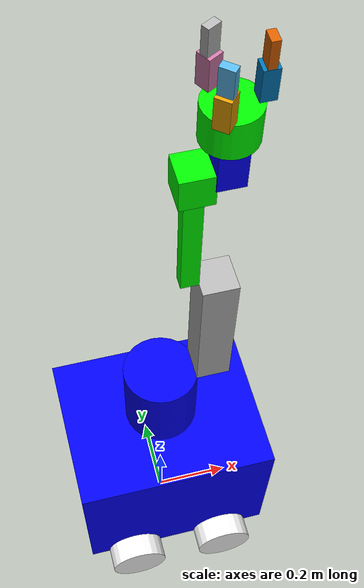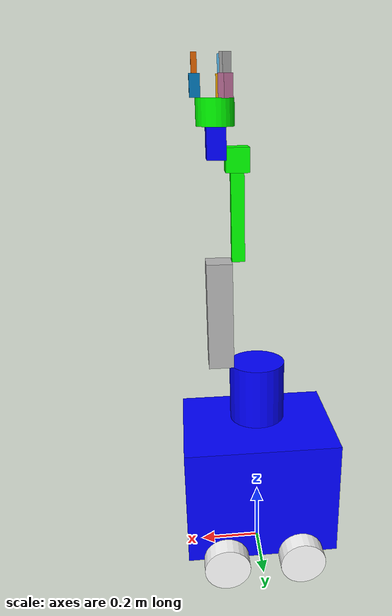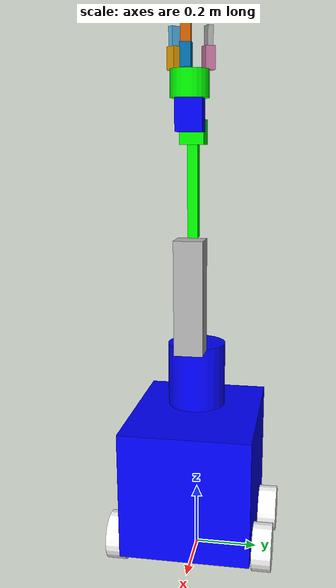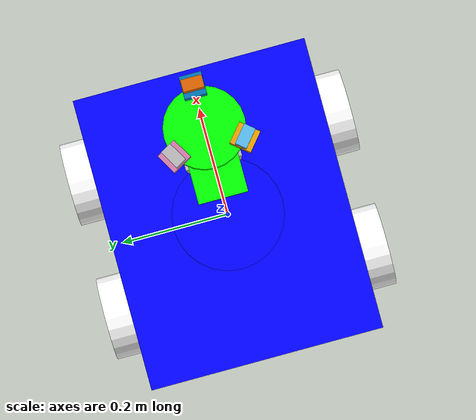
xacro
<?xml version="1.0"?>

<robot name="gazebo_M.A.R.S_prototype" xmlns:xacro="http://www.ros.org/wiki/xacro">
<xacro:property name="radius" value="0.075" />
<xacro:property name="length" value="0.06" />

<!--MATERIAL COLORS -->
  <material name="blue">
    <color rgba="0 0 1 1"/>
  </material>

<material name="red">
    <color rgba="1 0 0 1"/>
  </material>

<material name="pink">
    <color rgba="0.8 0 1 0.5"/>
  </material>

    <material name="white">
    <color rgba="1 1 1 1"/>
  </material>

  <material name="green">
    <color rgba="0 1 0 1"/>
</material>

<gazebo reference="base_link">
  <material>Gazebo/orange</material>
</gazebo>

<!--/////////////////////// MACROS FOR GAZEBO TRANSMISSION TAGS AND ROS CONTROL PLUGIN ///////////////////////////////////////////////-->
 <!-- plugin -->

 <xacro:macro name="transmission_block" params="joint_name">
	    <transmission name="joint_tranmission">
	    <type>transmission_interface/SimpleTransmission</type>
	    <joint name="${joint_name}">
	        <hardwareInterface>hardware_interface/PositionJointInterface</hardwareInterface>
	    </joint>
	    <actuator name="joint_motor">
	        <hardwareInterface>hardware_interface/PositionJointInterface</hardwareInterface>
	        <mechanicalReduction>1</mechanicalReduction>
	    </actuator>
	  </transmission>
   </xacro:macro>

<!-- Macros for inertia matrix calculations-->
<property name="M_PI" value="3.1415926535897931" />
 <xacro:macro name="sphere_inertial" params="radius mass">
    <inertial>
      <mass value="${mass}" />
      <origin xyz="0 0 0" />
      <inertia ixx="${0.4 * mass * radius * radius}" ixy="0.0" ixz="0.0"
        iyy="${0.4 * mass * radius * radius}" iyz="0.0"
        izz="${0.4 * mass * radius * radius}" />
    </inertial>
  </xacro:macro>

  <xacro:macro name="cylinder_inertial" params="radius length mass x y z">
    <inertial>
      <mass value="${mass}" />
      <origin xyz="${x} ${y} ${z}" />
      <inertia ixx="${0.0833333 * mass * (3 * radius * radius + length * length)}" ixy="0.0" ixz="0.0"
        iyy="${0.0833333 * mass * (3 * radius * radius + length * length)}" iyz="0.0"
        izz="${0.5 * mass * radius * radius}" />
    </inertial>
  </xacro:macro>

<!-- MOBILE PLATFORM CHASSIS-->
  <link name="base_link">
      <origin rpy="0 0 0" xyz="0 0 0"/>
 </link>
<joint name="dummy_link_to_base_link" type="fixed">
  <axis xyz="0 0 0"/>
<origin rpy="0 0 0" xyz="0 0 0"/>
    <parent link="base_link"/>
    <child link="dummy_link_chassis"/>

  </joint>

<!--Visual of the Link-->
  <link name="dummy_link_chassis">
    <visual>

    <geometry>

        <box size="0.5 0.40 0.40"/>
       </geometry>
  <!-- Setting up the origin of the link -->
      <origin rpy="0 0 0" xyz="0 0 0.275"/>
       <material name="blue"/>
    </visual>
<!--  COLLISION -->
    <collision>
      <geometry>
       <box size="0.51 0.41 0.41"/>

      </geometry>
      <origin rpy="0 0 0" xyz="0 0 0.275"/>
    </collision>
<!--  INERTIAL -->
    <inertial>
      <mass value="5.0"/>

      <inertia
          ixx="0.1333333" ixy="0" ixz="0"
          iyy="0.1708333" iyz="0"
          izz="0.1708333"
      />
      <origin rpy="0 0 0" xyz="0 0 0.275"/>
    </inertial>

  </link>

<!--WHEEL_1-->
<!--Visual of the Link-->
  <link name="wheel1">
    <visual>
      <geometry>
      <cylinder radius="${radius}" length="${length}"/>
      </geometry>
  <!-- Setting up the origin of the link -->
       <origin rpy="0 1.57075 1.57075" xyz="0 0 0"/>
        <material name="white"/>
    </visual>
     <collision>
<!--  COLLISION -->
     <origin rpy="0 1.57075 1.57075" xyz="0 0 0"/>
      <geometry>
         <cylinder radius="${radius}" length="${length}"/>
      </geometry>
    </collision>
<!--  INERTIAL -->
 <inertial>
      <origin xyz="0 0 0" rpy="0 1.5707 1.5707"/>
      <mass value="0.4"/>

      <inertia
        ixx="0.0006825" ixy="0.0" ixz="0.0"
        iyy="0.0006825" iyz="0.0"
        izz="0.001125"/>
    </inertial>

  </link>

<joint name="base_link_to_wheel1" type="continuous">
  <axis xyz="0 1 0"/>
<origin rpy="0 0 0" xyz="0.125 0.23 0.075"/>
 <joint_properties damping="0.0" friction="0.0"/>
    <parent link="base_link"/>
    <child link="wheel1"/>

  </joint>

<!--WHEEL_2-->
<!--Visual of the Link-->
<link name="wheel2">
    <visual>
      <geometry>
         <cylinder radius="${radius}" length="${length}"/>
      </geometry>
  <!-- Setting up the origin of the link -->
       <origin rpy="0 1.57075 1.57075" xyz="0 0 0"/>
       <material name="white"/>
    </visual>
     <collision>
<!--  COLLISION -->
     <origin rpy="0 1.57075 1.57075" xyz="0 0 0"/>
      <geometry>
         <cylinder radius="${radius}" length="${length}"/>
      </geometry>
    </collision>
<!--  INERTIAL -->
    <inertial>
      <origin xyz="0 0 0" rpy="0 1.5707 1.5707"/>
      <mass value="0.4"/>

      <inertia
        ixx="0.0006825" ixy="0.0" ixz="0.0"
        iyy="0.0006825" iyz="0.0"
        izz="0.001125"/>
    </inertial>
  </link>

<joint name="base_link_to_wheel2" type="continuous">
    <parent link="base_link"/>
    <child link="wheel2"/>
    <origin rpy="0 0 0" xyz="-0.125 0.23 0.075"/>
    <joint_properties damping="0.0" friction="0.0"/>
    <axis xyz="0 1 0"/>

  </joint>
<!--WHEEL_3-->
<!--Visual of the Link-->
<link name="wheel3">
    <visual>
      <geometry>
  <!-- Setting up the origin of the link -->
         <cylinder radius="${radius}" length="${length}"/>
      </geometry>
       <origin rpy="0 1.57075 1.57075" xyz="0 0 0"/>
          <material name="white"/>
    </visual>
    <collision>
<!--  COLLISION -->
    <origin rpy="0 1.57075 1.57075" xyz="0 0 0"/>
      <geometry>
        <cylinder radius="${radius}" length="${length}"/>
      </geometry>
    </collision>
<!--  INERTIAL -->
    <inertial>
      <origin xyz="0 0 0" rpy="0 1.5707 1.5707"/>
      <mass value="0.4"/>

      <inertia
        ixx="0.0006825" ixy="0.0" ixz="0.0"
        iyy="0.0006825" iyz="0.0"
        izz="0.001125"/>
    </inertial>
  </link>

    <joint name="base_link_to_wheel3" type="continuous">
    <parent link="base_link"/>
    <child link="wheel3"/>
    <axis xyz="0 1 0"/>
    <joint_properties damping="0.0" friction="0.0"/>
   <origin  xyz="0.125 -0.23 0.075"/>

  </joint>
<!--WHEEL_4-->
<!--Visual of the Link-->
<link name="wheel4">
    <visual>
      <geometry>
  <!-- Setting up the origin of the link -->
        <cylinder radius="${radius}" length="${length}"/>
      </geometry>
       <origin rpy="0 1.57075 1.57075" xyz="0 0 0"/>
      <material name="white"/>
    </visual>
<collision>
<!--  COLLISION -->
<origin rpy="0 1.57075 1.57075" xyz="0 0 0"/>
      <geometry>
         <cylinder radius="${radius}" length="${length}"/>
      </geometry>
    </collision>
<!--  INERTIAL -->
    <inertial>
      <origin xyz="0 0 0" rpy="0 1.5707 1.5707"/>
      <mass value="0.4"/>

      <inertia
        ixx="0.0006825" ixy="0.0" ixz="0.0"
        iyy="0.0006825" iyz="0.0"
        izz="0.001125"/>
    </inertial>
  </link>

    <joint name="base_link_to_wheel4" type="continuous">
    <parent link="base_link"/>
    <child link="wheel4"/>
    <joint_properties damping="0.0" friction="0.0"/>
    <axis xyz="0 1 0"/>
    <origin  xyz="-0.125 -0.23 0.075"/>

  </joint>

<!-- MANIPULATOR-->
<!-- BASE CYLINDER -->
<link name="base_cylinder">
    <visual>
    <geometry>
    <cylinder length="0.20" radius="0.09"/>
    </geometry>
    <origin rpy="0 0 0" xyz="0 0 0.10"/>
    <material name="blue"/>
    </visual>

    <collision>
    <geometry>
    <cylinder length="0.21" radius="0.10"/>
    </geometry>
    <origin rpy="0 0 0" xyz="0 0 0.10"/>
    </collision>

    <!-- PHYSICAL PROPERTIES -->
    <xacro:cylinder_inertial mass="3" length="0.20" radius="0.09" x="0" y="0" z="0.10"/>
</link>

    <joint name="base_link_to_base_cylinder" type="revolute">
    <parent link="base_link"/>
    <child link="base_cylinder"/>
    <origin rpy="0 0 0" xyz="0 0 0.5"/>
    <axis xyz="0 0 1"/>
    <limit effort="36" velocity="1" lower="-3.14" upper="3.14"/>
    <dynamics damping="50" friction="1"/>
    </joint>
<!-- LINK 2 -->
<link name="link_2">
    <visual>
        <geometry>
        <box size="0.34 0.086 0.0795"/>
        </geometry>
        <origin rpy="0 1.57075 0" xyz="0.028 0 0.17"/>
    </visual>

    <collision>
        <geometry>
        <box size="0.35 0.086 0.0795"/>
        </geometry>
        <origin rpy="0 1.57075 0" xyz="0.028 0 0.17"/>
    </collision>

    <!-- PHYSICAL PROPERTIES -->

    <inertial>
    <mass value="3"/>
    <inertia ixx="0.030749" ixy="0.0" ixz="0.0" iyy="0.0304800625" iyz="0.0" izz="0.0034290625"/>
    <origin rpy="0 0 0" xyz="0 0 0.17"/>
    </inertial>

</link>

    <joint name="base_cylinder_to_link2" type="revolute">
    <parent link="base_cylinder"/>
    <child link="link_2"/>
    <origin rpy="0 0 0" xyz="0.09 0 0.20"/>
    <axis xyz="1 0 0"/>
    <limit effort="25" velocity="0.2094" lower="-1.57" upper="1.57"/>
    <dynamics damping="50" friction="1"/>
    </joint>
<!-- LINK 3 -->
<link name="link_3">
    <visual>
        <geometry>
        <box size="0.265 0.03 0.04"/>
        </geometry>
        <origin rpy="0 1.57075 0" xyz="-0.032 0 0.1325"/>
        <material name="green"/>
    </visual>

    <collision>
        <geometry>
        <box size="0.275 0.03 0.074"/>
        </geometry>
        <origin rpy="0 1.57075 0" xyz="-0.032 0 0.1325"/>
    </collision>

    <!-- PHYSICAL PROPERTIES -->

    <inertial>
    <mass value="0.120"/>
    <inertia ixx="0.00071125" ixy="0.0" ixz="0.0" iyy="0.00071825" iyz="0.0" izz="2.5e-05"/>
    <origin rpy="0 1.57075 0" xyz="-0.032 0 0"/>
    </inertial>

</link>

    <joint name="link_2_to_link_3" type="revolute">
    <parent link="link_2"/>
    <child link="link_3"/>
    <origin rpy="0 0 0" xyz="0 0 0.34"/>
    <axis xyz="1 0 0"/>
    <limit effort="15" velocity="5.2359" lower="-1.57" upper="1.57"/>
    <dynamics damping="50" friction="1"/>
    </joint>

<!-- MOTOR NO 4 -->
    <link name="motor_4">
    <visual>
        <geometry>
        <box size="0.07 0.07 0.07"/>
        </geometry>
        <origin rpy="0 0 0" xyz="-0.032 0 0"/>
        <material name="green"/>
    </visual>

    <collision>
        <geometry>
        <box size="0.08 0.08 0.08"/>
        </geometry>
        <origin rpy="0 1.57075 0" xyz="-0.032 0 0"/>
    </collision>

    <inertial>
    <mass value="0.624"/>
    <inertia ixx="0.0005096" ixy="0.0" ixz="0.0" iyy="0.0005096" iyz="0.0" izz="0.0005096"/>
    </inertial>
    </link>

    <joint name="motor_4_to_link_3" type="fixed">
    <parent link="link_3"/>
    <child link="motor_4"/>
    <origin rpy="0 0 0" xyz="0 0 0.30"/>
    </joint>

<!-- LINK 4 -->
<link name="link_4">
    <visual>
        <geometry>
        <box size="0.09 0.0763 0.056"/>
        </geometry>
        <origin rpy="0 1.57075 0" xyz="0.028 0 0.045"/>
        <material name="blue"/>
    </visual>

    <collision>
        <geometry>
        <box size="0.10 0.0863 0.066"/>
        </geometry>
        <origin rpy="0 1.57075 0" xyz="0.028 0 0.045"/>
    </collision>

    <!-- PHYSICAL PROPERTIES -->

    <inertial>
    <mass value="0.674"/>
    <inertia ixx="0.00050312" ixy="0.0" ixz="0.0" iyy="0.00063108" iyz="0.0" izz="0.00078193"/>
    <origin rpy="0 1.57075 0" xyz="0.028 0 0.045"/>
    </inertial>

</link>

    <joint name="link_3_to_link_4" type="revolute">
    <parent link="motor_4"/>
    <child link="link_4"/>
    <origin rpy="0 0 0" xyz="0 0 0"/>
    <axis xyz="1 0 0"/>
    <limit effort="5" velocity="3.14" lower="-1.57" upper="1.57"/>
    <dynamics damping="50" friction="1"/>
    </joint>
<!-- GRIPPER BASE -->
<link name="gripper_base">
    <visual>
    <geometry>
    <cylinder length="0.07425" radius="0.055"/>
    </geometry>
    <origin rpy="0 0 0" xyz="0 0 0.037125"/>
    <material name="green"/>
    </visual>

    <collision>
    <geometry>
    <cylinder length="0.07425" radius="0.055"/>
    </geometry>
    <origin rpy="0 0 0" xyz="0 0 0.037125"/>
    </collision>

    <!-- PHYSICAL PROPERTIES -->

    <xacro:cylinder_inertial radius="0.055" length="0.07425" mass="0.3" x="0" y="0" z="0.03712"/>

</link>

    <joint name="link_4_to_gripper_base" type="revolute">
    <parent link="link_4"/>
    <child link="gripper_base"/>
    <origin rpy="0 0 0" xyz="0.028 0 0.09"/>
    <axis xyz="0 0 1"/>
    <limit effort="5" velocity="3.14" lower="-3.14" upper="3.14"/>
    <dynamics damping="50" friction="1"/>
    </joint>

<link name="finger_base1">
    <visual>
        <geometry>
        <box size="0.062 0.03 0.03"/>
        </geometry>
        <origin rpy="0 1.57075 0" xyz="0 0 0.031"/>
    </visual>

    <collision>
        <geometry>
        <box size="0.062 0.03 0.03"/>
        </geometry>
        <origin rpy="0 1.57075 0" xyz="0 0 0.031"/>
    </collision>

    <!-- PHYSICAL PROPERTIES -->

    <inertial>
    <mass value="0.025"/>
    <inertia ixx="9.8833333e-06" ixy="0.0" ixz="0.0" iyy="9.88333333333e-06" iyz="0.0" izz="3.75e-06"/>
    <origin rpy="0 0 0" xyz="0 0 0.031"/>
    </inertial>

</link>

    <joint name="gripper_base_to_finger_base1" type="revolute">
    <parent link="gripper_base"/>
    <child link="finger_base1"/>
    <origin rpy="0 0 0" xyz="0.055 0 0.07425"/>
    <axis xyz="0 1 0"/>
    <limit effort="30" velocity="1" lower="-0.0349066" upper="0.750492"/>
    <dynamics damping="50" friction="1"/>
    </joint>

<link name="finger_top1">
    <visual>
        <geometry>
        <box size="0.052 0.028 0.016"/>
        </geometry>
        <origin rpy="0 1.57075 0" xyz="0 0 0.026"/>
    </visual>

    <collision>
        <geometry>
        <box size="0.052 0.028 0.016"/>
        </geometry>
        <origin rpy="0 1.57075 0" xyz="0 0 0.026"/>
    </collision>

    <!-- PHYSICAL PROPERTIES -->

    <inertial>
    <mass value="0.025"/>
    <inertia ixx="7.26666666667e-06" ixy="0.0" ixz="0.0" iyy="6.16666666667e-06" iyz="0.0" izz="2.16666666667e-06"/>
    <origin rpy="0 0 0" xyz="0 0 0.026"/>
    </inertial>
</link>

    <joint name="finger_base1_to_finger_top1" type="revolute">
    <parent link="finger_base1"/>
    <child link="finger_top1"/>
    <origin rpy="0 0 0" xyz="0 0 0.062"/>
    <axis xyz="0 1 0"/>
    <limit effort="30" velocity="1" lower="-0.785398" upper="0"/>
    <dynamics damping="50" friction="1"/>
    </joint>
<link name="finger_base2">
    <visual>
        <geometry>
        <box size="0.062 0.03 0.03"/>
        </geometry>
        <origin rpy="0 1.57075 0" xyz="0 0 0.031"/>
    </visual>

    <collision>
        <geometry>
        <box size="0.062 0.03 0.03"/>
        </geometry>
        <origin rpy="0 1.57075 0" xyz="0 0 0.031"/>
    </collision>

    <!-- PHYSICAL PROPERTIES -->

  <inertial>
    <mass value="0.025"/>
    <inertia ixx="9.88333333333e-06" ixy="0.0" ixz="0.0" iyy="9.88333333333e-06" iyz="0.0" izz="3.75e-06"/>
    <origin rpy="0 0 0" xyz="0 0 0.031"/>
    </inertial>
</link>

    <joint name="gripper_base_to_finger_base2" type="revolute">
    <parent link="gripper_base"/>
    <child link="finger_base2"/>
    <origin rpy="0 0 2.0944" xyz=" -0.0275 0.047631 0.07425"/>
    <axis xyz="0 1 0"/>
    <limit effort="30" velocity="1" lower="-0.750492" upper="0.0349066"/>
    <dynamics damping="50" friction="1"/>
    </joint>

<link name="finger_top2">
    <visual>
        <geometry>
        <box size="0.052 0.028 0.016"/>
        </geometry>
        <origin rpy="0 1.57075 0" xyz="0 0 0.026"/>
    </visual>

    <collision>
        <geometry>
        <box size="0.052 0.028 0.016"/>
        </geometry>
        <origin rpy="0 1.57075 0" xyz="0 0 0.026"/>
    </collision>

    <!-- PHYSICAL PROPERTIES -->

   <inertial>
    <mass value="0.025"/>
    <inertia ixx="7.26666666667e-06" ixy="0.0" ixz="0.0" iyy="6.16666666667e-06" iyz="0.0" izz="2.16666666667e-06"/>
    <origin rpy="0 0 0" xyz="0 0 0.026"/>
    </inertial>
</link>

    <joint name="finger_base2_to_finger_top2" type="revolute">
    <parent link="finger_base2"/>
    <child link="finger_top2"/>
    <origin rpy="0 0 0" xyz="0 0 0.062"/>
    <axis xyz="0 1 0"/>
    <limit effort="30" velocity="1" lower="0" upper="-0.785398"/>
    <dynamics damping="50" friction="1"/>
    </joint>
<link name="finger_base3">
    <visual>
        <geometry>
        <box size="0.062 0.03 0.03"/>
        </geometry>
        <origin rpy="0 1.57075 0" xyz="0 0 0.031"/>
    </visual>

    <collision>
        <geometry>
        <box size="0.062 0.03 0.03"/>
        </geometry>
        <origin rpy="0 1.57075 0" xyz="0 0 0.031"/>
    </collision>

    <!-- PHYSICAL PROPERTIES -->

  <inertial>
    <mass value="0.025"/>
    <inertia ixx="9.88333333333e-06" ixy="0.0" ixz="0.0" iyy="9.88333333333e-06" iyz="0.0" izz="3.75e-06"/>
    <origin rpy="0 0 0" xyz="0 0 0.031"/>
    </inertial>
</link>

    <joint name="gripper_base_to_finger_base3" type="revolute">
    <parent link="gripper_base"/>
    <child link="finger_base3"/>
    <origin rpy="0 0 0.872665" xyz=" -0.0275 -0.047631 0.07425"/>
    <axis xyz="0 1 0"/>
    <limit effort="30" velocity="1" lower="-0.0349066" upper="0.750492"/>
    <dynamics damping="50" friction="1"/>
    </joint>

<link name="finger_top3">
    <visual>
        <geometry>
        <box size="0.052 0.028 0.016"/>
        </geometry>
        <origin rpy="0 1.57075 0" xyz="0 0 0.026"/>
    </visual>

    <collision>
        <geometry>
        <box size="0.052 0.028 0.016"/>
        </geometry>
        <origin rpy="0 1.57075 0" xyz="0 0 0.026"/>
    </collision>

    <!-- PHYSICAL PROPERTIES -->

   <inertial>
    <mass value="0.025"/>
    <inertia ixx="7.26666666667e-06" ixy="0.0" ixz="0.0" iyy="6.16666666667e-06" iyz="0.0" izz="2.16666666667e-06"/>
    <origin rpy="0 0 0" xyz="0 0 0.026"/>
    </inertial>
</link>

    <joint name="finger_base3_to_finger_top3" type="revolute">
    <parent link="finger_base3"/>
    <child link="finger_top3"/>
    <origin rpy="0 0 0" xyz="0 0 0.062"/>
    <axis xyz="0 1 0"/>
    <limit effort="30" velocity="1" lower="0" upper="0.785398"/>
    <dynamics damping="50" friction="1"/>
    </joint>

<!--///////////////// TRANSMISSION TAGS FOR GAZEBO /////////////////////////////////-->
  <gazebo>
      <plugin name="gazebo_ros_control" filename="libgazebo_ros_control.so">
      <robotNamespace>/gazebo_MARS_prototype</robotNamespace>
      </plugin>
  </gazebo>

    <xacro:transmission_block joint_name="base_link_to_base_cylinder"/>
    <xacro:transmission_block joint_name="base_cylinder_to_link2"/>
    <xacro:transmission_block joint_name="link_2_to_link_3"/>
    <xacro:transmission_block joint_name="link_3_to_link_4"/>
    <xacro:transmission_block joint_name="link_4_to_gripper_base"/>

<!-- wheel 1 transmission tag-->

<transmission name="base_to_wheel1">
  <type>transmission_interface/SimpleTransmission</type>
  <actuator name="motor1">
  <mechanicalReduction>1</mechanicalReduction>
     <hardwareInterface>EffortJointInterface</hardwareInterface>

</actuator>
<joint name="base_link_to_wheel1">
   <hardwareInterface>hardware_interface/VelocityJointInterface</hardwareInterface>
</joint>
</transmission>

<!-- wheel 2 transmission tag-->

<transmission name="base_to_wheel2">
  <type>transmission_interface/SimpleTransmission</type>
  <actuator name="motor2">
  <mechanicalReduction>1</mechanicalReduction>
 <hardwareInterface>EffortJointInterface</hardwareInterface>

</actuator>
<joint name="base_link_to_wheel2">
   <hardwareInterface>hardware_interface/VelocityJointInterface</hardwareInterface>
</joint>
</transmission>

<!-- wheel 3 transmission tag-->

<transmission name="base_to_wheel3">
  <type>transmission_interface/SimpleTransmission</type>
  <actuator name="motor3">
  <mechanicalReduction>1</mechanicalReduction>
   <hardwareInterface>EffortJointInterface</hardwareInterface>

</actuator>
<joint name="base_link_to_wheel3">
   <hardwareInterface>hardware_interface/VelocityJointInterface</hardwareInterface>
</joint>
</transmission>

<!-- wheel 4 transmission tag-->

<transmission name="base_to_wheel4">
  <type>transmission_interface/SimpleTransmission</type>
  <actuator name="motor4">
  <mechanicalReduction>1</mechanicalReduction>
   <hardwareInterface>EffortJointInterface</hardwareInterface>

</actuator>
<joint name="base_link_to_wheel4">
   <hardwareInterface>hardware_interface/VelocityJointInterface</hardwareInterface>
</joint>
</transmission>

</robot>
